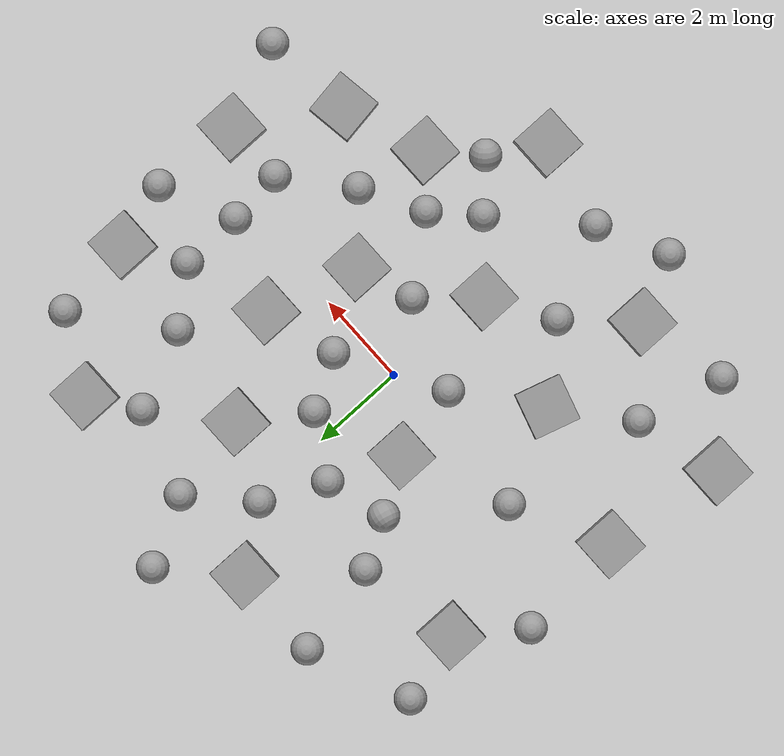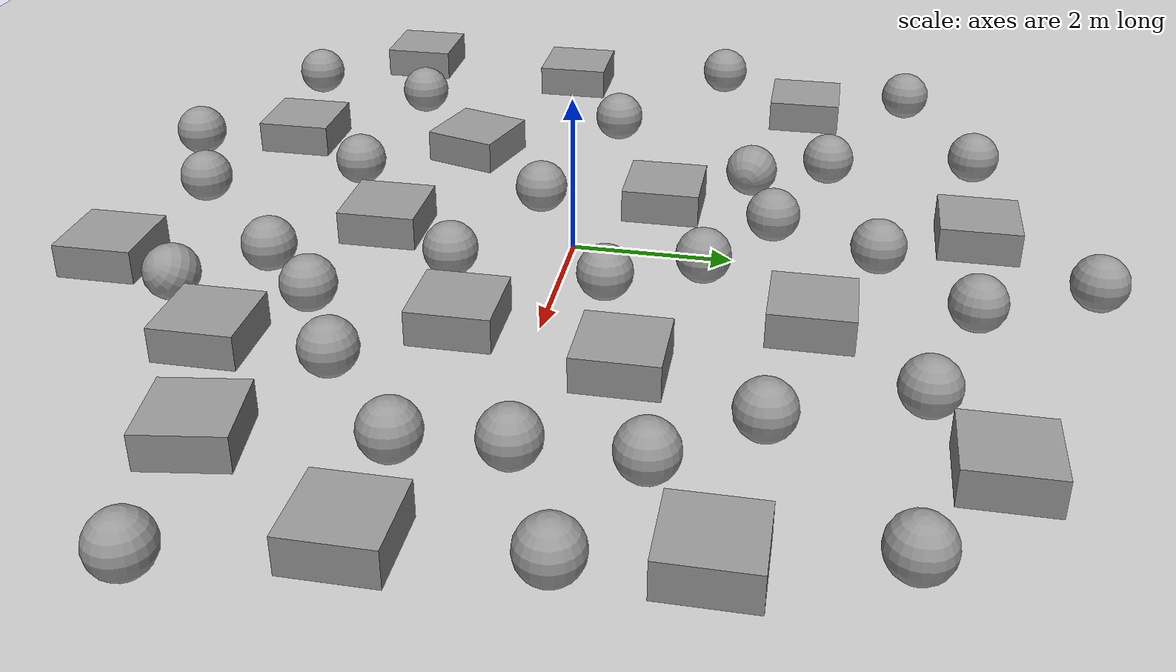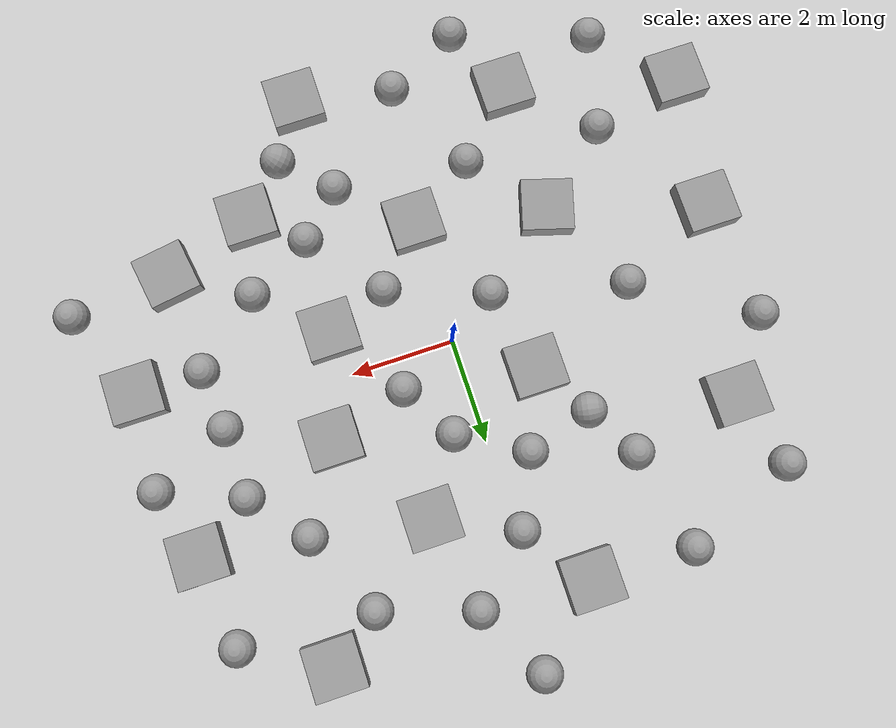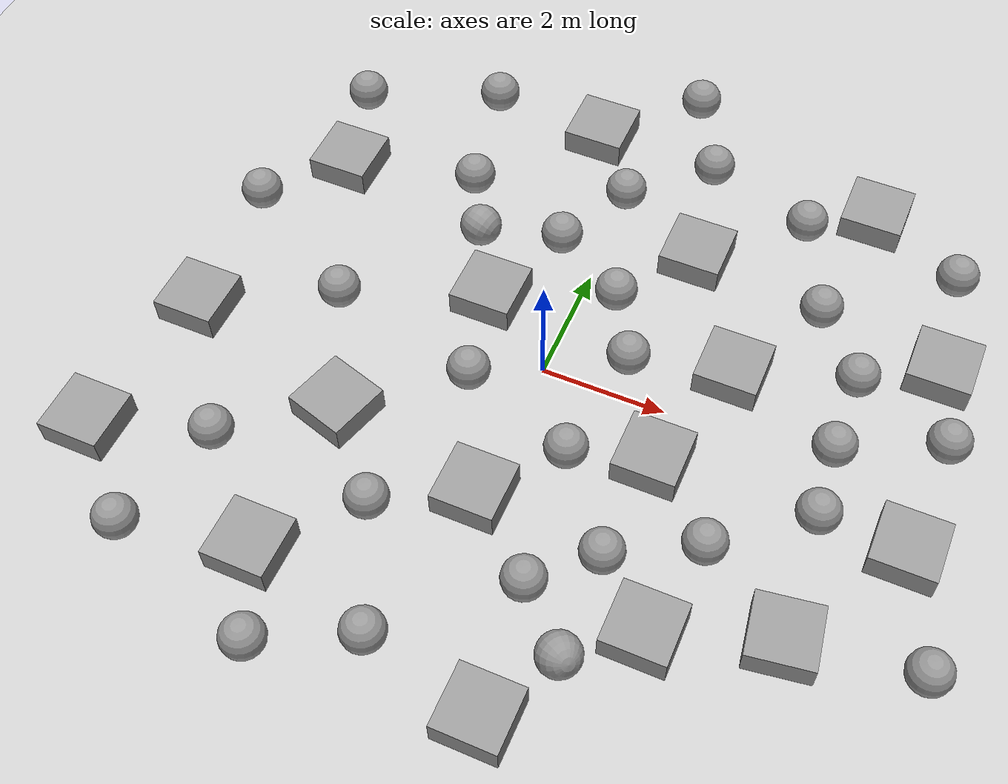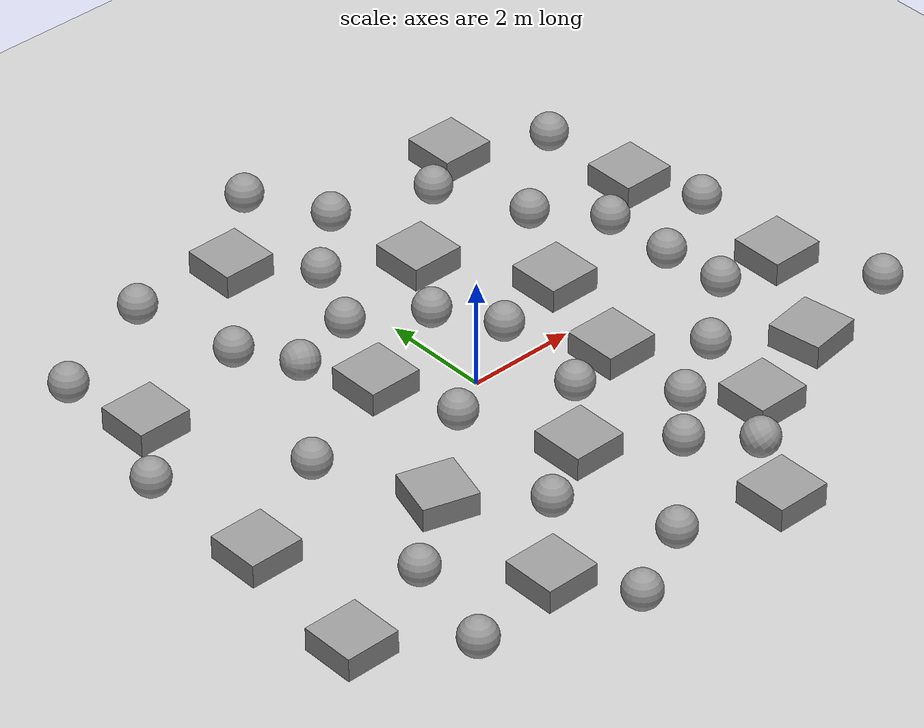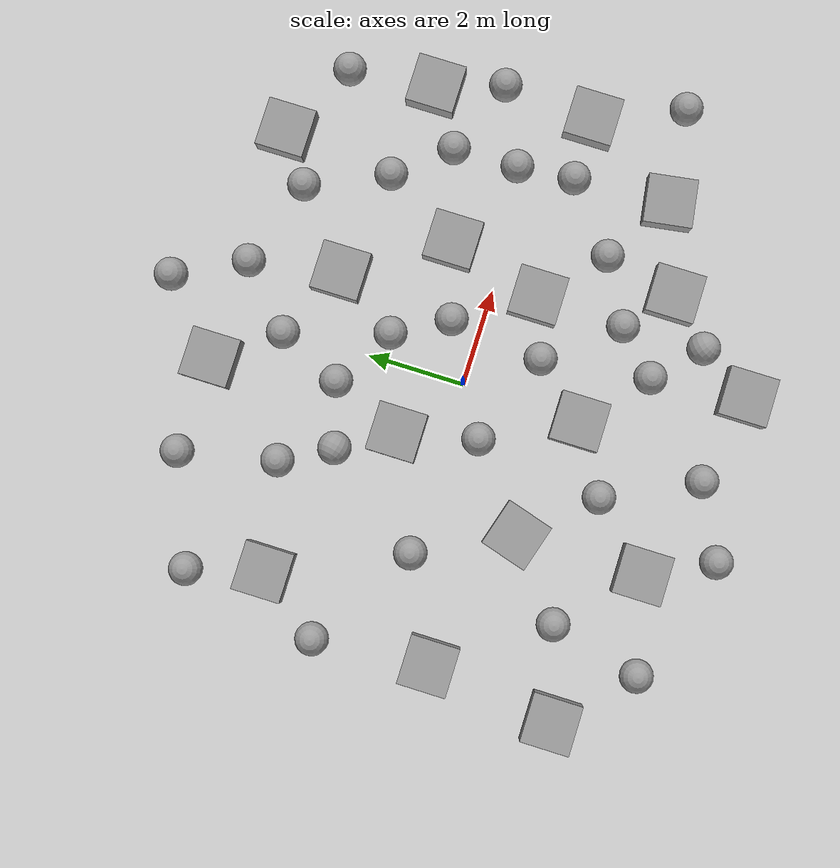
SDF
<sdf version="1.7">
 <world name="default">
  <light name="sun" type="directional">
   <pose>0 0 10 0 -0 0</pose>
   <diffuse>0.8 0.8 0.8 1</diffuse>
   <specular>0.2 0.2 0.2 1</specular>
   <attenuation>
    <range>1000</range>
    <constant>0.9</constant>
    <linear>0.01</linear>
    <quadratic>0.001</quadratic>
   </attenuation>
   <direction>-0.5 0.1 -0.9</direction>
   <spot><inner_angle>0</inner_angle><outer_angle>0</outer_angle><falloff>0</falloff></spot>
  </light>
  <model name="my_ground_plane">
   <static>1</static>
   <link name="plane">
    <visual name="plane"><geometry><plane><normal>0 0 1</normal><size>100 100</size></plane></geometry></visual>
    <collision name="plane">
     <geometry><plane><normal>0 0 1</normal><size>100 100</size></plane></geometry>
     <surface>
      <bounce><restitution_coefficient>0</restitution_coefficient><threshold>1e+06</threshold></bounce>
      <contact>
       <collide_without_contact>0</collide_without_contact>
       <collide_without_contact_bitmask>1</collide_without_contact_bitmask>
       <collide_bitmask>1</collide_bitmask>
       <ode>
        <soft_cfm>0</soft_cfm>
        <soft_erp>0.2</soft_erp>
        <kp>1e+06</kp>
        <kd>1000</kd>
        <max_vel>0</max_vel>
        <min_depth>0.001</min_depth>
       </ode>
       <bullet>
        <split_impulse>1</split_impulse>
        <split_impulse_penetration_threshold>-0.01</split_impulse_penetration_threshold>
        <soft_cfm>0</soft_cfm>
        <soft_erp>0.2</soft_erp>
        <kp>1e+06</kp>
        <kd>1000</kd>
       </bullet>
      </contact>
      <soft_contact>
       <dart>
        <bone_attachment>10</bone_attachment>
        <stiffness>10</stiffness>
        <damping>1</damping>
        <flesh_mass_fraction>0.05</flesh_mass_fraction>
       </dart>
      </soft_contact>
      <friction>
       <ode><mu>1</mu><mu2>10000</mu2><fdir1>0 0 1</fdir1><slip1>0</slip1><slip2>0</slip2></ode>
       <torsional>
        <coefficient>1</coefficient>
        <patch_radius>0</patch_radius>
        <surface_radius>0</surface_radius>
        <use_patch_radius>1</use_patch_radius>
        <ode><slip>0</slip></ode>
       </torsional>
      </friction>
     </surface>
    </collision>
   </link>
  </model>
  <physics default="1" type="ode">
   <max_step_size>0.001</max_step_size>
   <real_time_factor>1000</real_time_factor>
   <max_contacts>1</max_contacts>
   <ode>
    <solver>
     <type>quick</type>
     <iters>10</iters>
     <sor>1.3</sor>
     <use_dynamic_moi_rescaling>0</use_dynamic_moi_rescaling>
    </solver>
    <constraints>
     <cfm>0</cfm>
     <erp>0.2</erp>
     <contact_max_correcting_vel>100</contact_max_correcting_vel>
     <contact_surface_layer>0.001</contact_surface_layer>
    </constraints>
   </ode>
   <real_time_update_rate>1000</real_time_update_rate>
  </physics>
  <gravity>0 0 -9.8</gravity>
  <magnetic_field>6e-06 2.3e-05 -4.2e-05</magnetic_field>
  <atmosphere type="adiabatic"/>
  <scene><ambient>0.4 0.4 0.4 1</ambient><background>0.7 0.7 0.7 1</background><shadows>1</shadows></scene>
  <spherical_coordinates>
   <surface_model>EARTH_WGS84</surface_model>
   <latitude_deg>0</latitude_deg>
   <longitude_deg>0</longitude_deg>
   <elevation>0</elevation>
   <heading_deg>0</heading_deg>
  </spherical_coordinates>
  <model name="unit_box">
   <pose>-2.56551 -1.90828 0.216406 -1.2e-05 2.9e-05 1.2813</pose>
   <link name="link">
    <inertial>
     <mass>1</mass>
     <inertia>
      <ixx>0.166667</ixx>
      <ixy>0</ixy>
      <ixz>0</ixz>
      <iyy>0.166667</iyy>
      <iyz>0</iyz>
      <izz>0.166667</izz>
     </inertia>
    </inertial>
    <collision name="collision"><geometry><box><size>1 1 0.432928</size></box></geometry></collision>
    <visual name="visual">
     <geometry><box><size>1 1 0.432928</size></box></geometry>
     <material>
      <script><name>Gazebo/Grey</name><uri>file://media/materials/scripts/gazebo.material</uri></script>
     </material>
    </visual>
   </link>
  </model>
  <model name="unit_box_clone">
   <pose>-2.57069 -4.51541 0.216404 1.2e-05 -3e-05 0.000461</pose>
   <link name="link">
    <inertial>
     <mass>1</mass>
     <inertia>
      <ixx>0.166667</ixx>
      <ixy>0</ixy>
      <ixz>0</ixz>
      <iyy>0.166667</iyy>
      <iyz>0</iyz>
      <izz>0.166667</izz>
     </inertia>
    </inertial>
    <collision name="collision"><geometry><box><size>1 1 0.432928</size></box></geometry></collision>
    <visual name="visual">
     <geometry><box><size>1 1 0.432928</size></box></geometry>
     <material>
      <script><name>Gazebo/Grey</name><uri>file://media/materials/scripts/gazebo.material</uri></script>
     </material>
    </visual>
   </link>
  </model>
  <model name="unit_box_clone_0">
   <pose>-0.032227 -2.44685 0.216404 -3e-05 -1.2e-05 0.00073</pose>
   <link name="link">
    <inertial>
     <mass>1</mass>
     <inertia>
      <ixx>0.166667</ixx>
      <ixy>0</ixy>
      <ixz>0</ixz>
      <iyy>0.166667</iyy>
      <iyz>0</iyz>
      <izz>0.166667</izz>
     </inertia>
    </inertial>
    <collision name="collision"><geometry><box><size>1 1 0.432928</size></box></geometry></collision>
    <visual name="visual">
     <geometry><box><size>1 1 0.432928</size></box></geometry>
     <material>
      <script><name>Gazebo/Grey</name><uri>file://media/materials/scripts/gazebo.material</uri></script>
     </material>
    </visual>
   </link>
  </model>
  <model name="unit_box_clone_1">
   <pose>-1.32004 0.97796 0.216404 -1.2e-05 3e-05 0.000172</pose>
   <link name="link">
    <inertial>
     <mass>1</mass>
     <inertia>
      <ixx>0.166667</ixx>
      <ixy>0</ixy>
      <ixz>0</ixz>
      <iyy>0.166667</iyy>
      <iyz>0</iyz>
      <izz>0.166667</izz>
     </inertia>
    </inertial>
    <collision name="collision"><geometry><box><size>1 1 0.432928</size></box></geometry></collision>
    <visual name="visual">
     <geometry><box><size>1 1 0.432928</size></box></geometry>
     <material>
      <script><name>Gazebo/Grey</name><uri>file://media/materials/scripts/gazebo.material</uri></script>
     </material>
    </visual>
   </link>
  </model>
  <model name="unit_box_clone_2">
   <pose>-4.73653 2.66985 0.216404 3e-05 1.2e-05 0.000369</pose>
   <link name="link">
    <inertial>
     <mass>1</mass>
     <inertia>
      <ixx>0.166667</ixx>
      <ixy>0</ixy>
      <ixz>0</ixz>
      <iyy>0.166667</iyy>
      <iyz>0</iyz>
      <izz>0.166667</izz>
     </inertia>
    </inertial>
    <collision name="collision"><geometry><box><size>1 1 0.432928</size></box></geometry></collision>
    <visual name="visual">
     <geometry><box><size>1 1 0.432928</size></box></geometry>
     <material>
      <script><name>Gazebo/Grey</name><uri>file://media/materials/scripts/gazebo.material</uri></script>
     </material>
    </visual>
   </link>
  </model>
  <model name="unit_box_clone_3">
   <pose>-5.87273 -3.63259 0.216404 1.2e-05 -3e-05 -0.00019</pose>
   <link name="link">
    <inertial>
     <mass>1</mass>
     <inertia>
      <ixx>0.166667</ixx>
      <ixy>0</ixy>
      <ixz>0</ixz>
      <iyy>0.166667</iyy>
      <iyz>0</iyz>
      <izz>0.166667</izz>
     </inertia>
    </inertial>
    <collision name="collision"><geometry><box><size>1 1 0.432928</size></box></geometry></collision>
    <visual name="visual">
     <geometry><box><size>1 1 0.432928</size></box></geometry>
     <material>
      <script><name>Gazebo/Grey</name><uri>file://media/materials/scripts/gazebo.material</uri></script>
     </material>
    </visual>
   </link>
  </model>
  <model name="unit_box_clone_4">
   <pose>-5.52181 -0.999996 0.216404 -1.2e-05 3e-05 -0.000408</pose>
   <link name="link">
    <inertial>
     <mass>1</mass>
     <inertia>
      <ixx>0.166667</ixx>
      <ixy>0</ixy>
      <ixz>0</ixz>
      <iyy>0.166667</iyy>
      <iyz>0</iyz>
      <izz>0.166667</izz>
     </inertia>
    </inertial>
    <collision name="collision"><geometry><box><size>1 1 0.432928</size></box></geometry></collision>
    <visual name="visual">
     <geometry><box><size>1 1 0.432928</size></box></geometry>
     <material>
      <script><name>Gazebo/Grey</name><uri>file://media/materials/scripts/gazebo.material</uri></script>
     </material>
    </visual>
   </link>
  </model>
  <model name="unit_box_clone_5">
   <pose>-1.00001 5 0.216404 1.2e-05 -3e-05 -0.000553</pose>
   <link name="link">
    <inertial>
     <mass>1</mass>
     <inertia>
      <ixx>0.166667</ixx>
      <ixy>0</ixy>
      <ixz>0</ixz>
      <iyy>0.166667</iyy>
      <iyz>0</iyz>
      <izz>0.166667</izz>
     </inertia>
    </inertial>
    <collision name="collision"><geometry><box><size>1 1 0.432928</size></box></geometry></collision>
    <visual name="visual">
     <geometry><box><size>1 1 0.432928</size></box></geometry>
     <material>
      <script><name>Gazebo/Grey</name><uri>file://media/materials/scripts/gazebo.material</uri></script>
     </material>
    </visual>
   </link>
  </model>
  <model name="unit_box_clone_6">
   <pose>1.43636 -5.51743 0.216404 -3e-05 1.2e-05 0.000997</pose>
   <link name="link">
    <inertial>
     <mass>1</mass>
     <inertia>
      <ixx>0.166667</ixx>
      <ixy>0</ixy>
      <ixz>0</ixz>
      <iyy>0.166667</iyy>
      <iyz>0</iyz>
      <izz>0.166667</izz>
     </inertia>
    </inertial>
    <collision name="collision"><geometry><box><size>1 1 0.432928</size></box></geometry></collision>
    <visual name="visual">
     <geometry><box><size>1 1 0.432928</size></box></geometry>
     <material>
      <script><name>Gazebo/Grey</name><uri>file://media/materials/scripts/gazebo.material</uri></script>
     </material>
    </visual>
   </link>
  </model>
  <model name="unit_box_clone_7">
   <pose>4.77801 -2.90254 0.216404 -1.2e-05 -2.9e-05 0.148506</pose>
   <link name="link">
    <inertial>
     <mass>1</mass>
     <inertia>
      <ixx>0.166667</ixx>
      <ixy>0</ixy>
      <ixz>0</ixz>
      <iyy>0.166667</iyy>
      <iyz>0</iyz>
      <izz>0.166667</izz>
     </inertia>
    </inertial>
    <collision name="collision"><geometry><box><size>1 1 0.432928</size></box></geometry></collision>
    <visual name="visual">
     <geometry><box><size>1 1 0.432928</size></box></geometry>
     <material>
      <script><name>Gazebo/Grey</name><uri>file://media/materials/scripts/gazebo.material</uri></script>
     </material>
    </visual>
   </link>
  </model>
  <model name="unit_box_clone_8">
   <pose>2.15178 -0.909092 0.216404 3e-05 -1.2e-05 0.000706</pose>
   <link name="link">
    <inertial>
     <mass>1</mass>
     <inertia>
      <ixx>0.166667</ixx>
      <ixy>0</ixy>
      <ixz>0</ixz>
      <iyy>0.166667</iyy>
      <iyz>0</iyz>
      <izz>0.166667</izz>
     </inertia>
    </inertial>
    <collision name="collision"><geometry><box><size>1 1 0.432928</size></box></geometry></collision>
    <visual name="visual">
     <geometry><box><size>1 1 0.432928</size></box></geometry>
     <material>
      <script><name>Gazebo/Grey</name><uri>file://media/materials/scripts/gazebo.material</uri></script>
     </material>
    </visual>
   </link>
  </model>
  <model name="unit_box_clone_9">
   <pose>2.99997 -3.53883 0.216427 -1.1e-05 -1.5e-05 0.000387</pose>
   <link name="link">
    <inertial>
     <mass>1</mass>
     <inertia>
      <ixx>0.166667</ixx>
      <ixy>0</ixy>
      <ixz>0</ixz>
      <iyy>0.166667</iyy>
      <iyz>0</iyz>
      <izz>0.166667</izz>
     </inertia>
    </inertial>
    <collision name="collision"><geometry><box><size>1 1 0.432928</size></box></geometry></collision>
    <visual name="visual">
     <geometry><box><size>1 1 0.432928</size></box></geometry>
     <material>
      <script><name>Gazebo/Grey</name><uri>file://media/materials/scripts/gazebo.material</uri></script>
     </material>
    </visual>
   </link>
  </model>
  <model name="unit_box_clone_10">
   <pose>1.44567 3.03575 0.216404 1.2e-05 3e-05 0.000815</pose>
   <link name="link">
    <inertial>
     <mass>1</mass>
     <inertia>
      <ixx>0.166667</ixx>
      <ixy>0</ixy>
      <ixz>0</ixz>
      <iyy>0.166667</iyy>
      <iyz>0</iyz>
      <izz>0.166667</izz>
     </inertia>
    </inertial>
    <collision name="collision"><geometry><box><size>1 1 0.432928</size></box></geometry></collision>
    <visual name="visual">
     <geometry><box><size>1 1 0.432928</size></box></geometry>
     <material>
      <script><name>Gazebo/Grey</name><uri>file://media/materials/scripts/gazebo.material</uri></script>
     </material>
    </visual>
   </link>
  </model>
  <model name="unit_box_clone_11">
   <pose>3.9093 4.98848 0.216404 3e-05 1.2e-05 0.000517</pose>
   <link name="link">
    <inertial>
     <mass>1</mass>
     <inertia>
      <ixx>0.166667</ixx>
      <ixy>0</ixy>
      <ixz>0</ixz>
      <iyy>0.166667</iyy>
      <iyz>0</iyz>
      <izz>0.166667</izz>
     </inertia>
    </inertial>
    <collision name="collision"><geometry><box><size>1 1 0.432928</size></box></geometry></collision>
    <visual name="visual">
     <geometry><box><size>1 1 0.432928</size></box></geometry>
     <material>
      <script><name>Gazebo/Grey</name><uri>file://media/materials/scripts/gazebo.material</uri></script>
     </material>
    </visual>
   </link>
  </model>
  <model name="unit_box_clone_12">
   <pose>5.68865 2.34997 0.216404 1.2e-05 -3e-05 -4.2e-05</pose>
   <link name="link">
    <inertial>
     <mass>1</mass>
     <inertia>
      <ixx>0.166667</ixx>
      <ixy>0</ixy>
      <ixz>0</ixz>
      <iyy>0.166667</iyy>
      <iyz>0</iyz>
      <izz>0.166667</izz>
     </inertia>
    </inertial>
    <collision name="collision"><geometry><box><size>1 1 0.432928</size></box></geometry></collision>
    <visual name="visual">
     <geometry><box><size>1 1 0.432928</size></box></geometry>
     <material>
      <script><name>Gazebo/Grey</name><uri>file://media/materials/scripts/gazebo.material</uri></script>
     </material>
    </visual>
   </link>
  </model>
  <model name="unit_box_clone_13">
   <pose>2.72851 1.0618 0.216404 -1.2e-05 3e-05 -0.000334</pose>
   <link name="link">
    <inertial>
     <mass>1</mass>
     <inertia>
      <ixx>0.166667</ixx>
      <ixy>0</ixy>
      <ixz>0</ixz>
      <iyy>0.166667</iyy>
      <iyz>0</iyz>
      <izz>0.166667</izz>
     </inertia>
    </inertial>
    <collision name="collision"><geometry><box><size>1 1 0.432928</size></box></geometry></collision>
    <visual name="visual">
     <geometry><box><size>1 1 0.432928</size></box></geometry>
     <material>
      <script><name>Gazebo/Grey</name><uri>file://media/materials/scripts/gazebo.material</uri></script>
     </material>
    </visual>
   </link>
  </model>
  <model name="unit_box_clone_14">
   <pose>5.98965 -0.911359 0.216404 3e-05 1.2e-05 -0.000211</pose>
   <link name="link">
    <inertial>
     <mass>1</mass>
     <inertia>
      <ixx>0.166667</ixx>
      <ixy>0</ixy>
      <ixz>0</ixz>
      <iyy>0.166667</iyy>
      <iyz>0</iyz>
      <izz>0.166667</izz>
     </inertia>
    </inertial>
    <collision name="collision"><geometry><box><size>1 1 0.432928</size></box></geometry></collision>
    <visual name="visual">
     <geometry><box><size>1 1 0.432928</size></box></geometry>
     <material>
      <script><name>Gazebo/Grey</name><uri>file://media/materials/scripts/gazebo.material</uri></script>
     </material>
    </visual>
   </link>
  </model>
  <model name="unit_sphere">
   <pose>1.22164 -3.54343 0.339728 0 -0 0</pose>
   <link name="link">
    <inertial>
     <mass>1</mass>
     <inertia><ixx>0.1</ixx><ixy>0</ixy><ixz>0</ixz><iyy>0.1</iyy><iyz>0</iyz><izz>0.1</izz></inertia>
    </inertial>
    <collision name="collision"><geometry><sphere><radius>0.339738</radius></sphere></geometry></collision>
    <visual name="visual">
     <geometry><sphere><radius>0.339738</radius></sphere></geometry>
     <material>
      <script><name>Gazebo/Grey</name><uri>file://media/materials/scripts/gazebo.material</uri></script>
     </material>
    </visual>
   </link>
  </model>
  <model name="unit_sphere_clone">
   <pose>3.33514 -2.01552 0.339728 0 -0 0</pose>
   <link name="link">
    <inertial>
     <mass>1</mass>
     <inertia><ixx>0.1</ixx><ixy>0</ixy><ixz>0</ixz><iyy>0.1</iyy><iyz>0</iyz><izz>0.1</izz></inertia>
    </inertial>
    <collision name="collision"><geometry><sphere><radius>0.339738</radius></sphere></geometry></collision>
    <visual name="visual">
     <geometry><sphere><radius>0.339738</radius></sphere></geometry>
     <material>
      <script><name>Gazebo/Grey</name><uri>file://media/materials/scripts/gazebo.material</uri></script>
     </material>
    </visual>
   </link>
  </model>
  <model name="unit_sphere_clone_0">
   <pose>4.55598 0.26518 0.339728 0 -0 0</pose>
   <link name="link">
    <inertial>
     <mass>1</mass>
     <inertia><ixx>0.1</ixx><ixy>0</ixy><ixz>0</ixz><iyy>0.1</iyy><iyz>0</iyz><izz>0.1</izz></inertia>
    </inertial>
    <collision name="collision"><geometry><sphere><radius>0.339738</radius></sphere></geometry></collision>
    <visual name="visual">
     <geometry><sphere><radius>0.339738</radius></sphere></geometry>
     <material>
      <script><name>Gazebo/Grey</name><uri>file://media/materials/scripts/gazebo.material</uri></script>
     </material>
    </visual>
   </link>
  </model>
  <model name="unit_sphere_clone_1">
   <pose>4.66141 -0.90999 0.339728 0 -0 0</pose>
   <link name="link">
    <inertial>
     <mass>1</mass>
     <inertia><ixx>0.1</ixx><ixy>0</ixy><ixz>0</ixz><iyy>0.1</iyy><iyz>0</iyz><izz>0.1</izz></inertia>
    </inertial>
    <collision name="collision"><geometry><sphere><radius>0.339738</radius></sphere></geometry></collision>
    <visual name="visual">
     <geometry><sphere><radius>0.339738</radius></sphere></geometry>
     <material>
      <script><name>Gazebo/Grey</name><uri>file://media/materials/scripts/gazebo.material</uri></script>
     </material>
    </visual>
   </link>
  </model>
  <model name="unit_sphere_clone_2">
   <pose>2.1054 -4.3963 0.339728 0.616639 -0.758014 1.66225</pose>
   <link name="link">
    <inertial>
     <mass>1</mass>
     <inertia><ixx>0.1</ixx><ixy>0</ixy><ixz>0</ixz><iyy>0.1</iyy><iyz>0</iyz><izz>0.1</izz></inertia>
    </inertial>
    <collision name="collision"><geometry><sphere><radius>0.339738</radius></sphere></geometry></collision>
    <visual name="visual">
     <geometry><sphere><radius>0.339738</radius></sphere></geometry>
     <material>
      <script><name>Gazebo/Grey</name><uri>file://media/materials/scripts/gazebo.material</uri></script>
     </material>
    </visual>
   </link>
  </model>
  <model name="unit_sphere_clone_3">
   <pose>-0.460179 -5.11526 0.339728 0 -0 0</pose>
   <link name="link">
    <inertial>
     <mass>1</mass>
     <inertia><ixx>0.1</ixx><ixy>0</ixy><ixz>0</ixz><iyy>0.1</iyy><iyz>0</iyz><izz>0.1</izz></inertia>
    </inertial>
    <collision name="collision"><geometry><sphere><radius>0.339738</radius></sphere></geometry></collision>
    <visual name="visual">
     <geometry><sphere><radius>0.339738</radius></sphere></geometry>
     <material>
      <script><name>Gazebo/Grey</name><uri>file://media/materials/scripts/gazebo.material</uri></script>
     </material>
    </visual>
   </link>
  </model>
  <model name="unit_sphere_clone_4">
   <pose>-1.36819 -3.24966 0.339728 0 -0 0</pose>
   <link name="link">
    <inertial>
     <mass>1</mass>
     <inertia><ixx>0.1</ixx><ixy>0</ixy><ixz>0</ixz><iyy>0.1</iyy><iyz>0</iyz><izz>0.1</izz></inertia>
    </inertial>
    <collision name="collision"><geometry><sphere><radius>0.339738</radius></sphere></geometry></collision>
    <visual name="visual">
     <geometry><sphere><radius>0.339738</radius></sphere></geometry>
     <material>
      <script><name>Gazebo/Grey</name><uri>file://media/materials/scripts/gazebo.material</uri></script>
     </material>
    </visual>
   </link>
  </model>
  <model name="unit_sphere_clone_5">
   <pose>-4.02602 -3.10738 0.339728 0 -0 0</pose>
   <link name="link">
    <inertial>
     <mass>1</mass>
     <inertia><ixx>0.1</ixx><ixy>0</ixy><ixz>0</ixz><iyy>0.1</iyy><iyz>0</iyz><izz>0.1</izz></inertia>
    </inertial>
    <collision name="collision"><geometry><sphere><radius>0.339738</radius></sphere></geometry></collision>
    <visual name="visual">
     <geometry><sphere><radius>0.339738</radius></sphere></geometry>
     <material>
      <script><name>Gazebo/Grey</name><uri>file://media/materials/scripts/gazebo.material</uri></script>
     </material>
    </visual>
   </link>
  </model>
  <model name="unit_sphere_clone_6">
   <pose>-3.52657 9e-05 0.339728 0 -0 0</pose>
   <link name="link">
    <inertial>
     <mass>1</mass>
     <inertia><ixx>0.1</ixx><ixy>0</ixy><ixz>0</ixz><iyy>0.1</iyy><iyz>0</iyz><izz>0.1</izz></inertia>
    </inertial>
    <collision name="collision"><geometry><sphere><radius>0.339738</radius></sphere></geometry></collision>
    <visual name="visual">
     <geometry><sphere><radius>0.339738</radius></sphere></geometry>
     <material>
      <script><name>Gazebo/Grey</name><uri>file://media/materials/scripts/gazebo.material</uri></script>
     </material>
    </visual>
   </link>
  </model>
  <model name="unit_sphere_clone_7">
   <pose>-0.970587 -0.620649 0.339728 0 -0 0</pose>
   <link name="link">
    <inertial>
     <mass>1</mass>
     <inertia><ixx>0.1</ixx><ixy>0</ixy><ixz>0</ixz><iyy>0.1</iyy><iyz>0</iyz><izz>0.1</izz></inertia>
    </inertial>
    <collision name="collision"><geometry><sphere><radius>0.339738</radius></sphere></geometry></collision>
    <visual name="visual">
     <geometry><sphere><radius>0.339738</radius></sphere></geometry>
     <material>
      <script><name>Gazebo/Grey</name><uri>file://media/materials/scripts/gazebo.material</uri></script>
     </material>
    </visual>
   </link>
  </model>
  <model name="unit_sphere_clone_8">
   <pose>1.17135 0.607658 0.339728 0 -0 0</pose>
   <link name="link">
    <inertial>
     <mass>1</mass>
     <inertia><ixx>0.1</ixx><ixy>0</ixy><ixz>0</ixz><iyy>0.1</iyy><iyz>0</iyz><izz>0.1</izz></inertia>
    </inertial>
    <collision name="collision"><geometry><sphere><radius>0.339738</radius></sphere></geometry></collision>
    <visual name="visual">
     <geometry><sphere><radius>0.339738</radius></sphere></geometry>
     <material>
      <script><name>Gazebo/Grey</name><uri>file://media/materials/scripts/gazebo.material</uri></script>
     </material>
    </visual>
   </link>
  </model>
  <model name="unit_sphere_clone_9">
   <pose>-0.701361 2.44642 0.339728 0 -0 0</pose>
   <link name="link">
    <inertial>
     <mass>1</mass>
     <inertia><ixx>0.1</ixx><ixy>0</ixy><ixz>0</ixz><iyy>0.1</iyy><iyz>0</iyz><izz>0.1</izz></inertia>
    </inertial>
    <collision name="collision"><geometry><sphere><radius>0.339738</radius></sphere></geometry></collision>
    <visual name="visual">
     <geometry><sphere><radius>0.339738</radius></sphere></geometry>
     <material>
      <script><name>Gazebo/Grey</name><uri>file://media/materials/scripts/gazebo.material</uri></script>
     </material>
    </visual>
   </link>
  </model>
  <model name="unit_sphere_clone_10">
   <pose>-2.55936 3.07722 0.339728 0 -0 0</pose>
   <link name="link">
    <inertial>
     <mass>1</mass>
     <inertia><ixx>0.1</ixx><ixy>0</ixy><ixz>0</ixz><iyy>0.1</iyy><iyz>0</iyz><izz>0.1</izz></inertia>
    </inertial>
    <collision name="collision"><geometry><sphere><radius>0.339738</radius></sphere></geometry></collision>
    <visual name="visual">
     <geometry><sphere><radius>0.339738</radius></sphere></geometry>
     <material>
      <script><name>Gazebo/Grey</name><uri>file://media/materials/scripts/gazebo.material</uri></script>
     </material>
    </visual>
   </link>
  </model>
  <model name="unit_sphere_clone_11">
   <pose>-1.99123 2.06937 0.339728 1.19726 -0.980323 -1.45778</pose>
   <link name="link">
    <inertial>
     <mass>1</mass>
     <inertia><ixx>0.1</ixx><ixy>0</ixy><ixz>0</ixz><iyy>0.1</iyy><iyz>0</iyz><izz>0.1</izz></inertia>
    </inertial>
    <collision name="collision"><geometry><sphere><radius>0.339738</radius></sphere></geometry></collision>
    <visual name="visual">
     <geometry><sphere><radius>0.339738</radius></sphere></geometry>
     <material>
      <script><name>Gazebo/Grey</name><uri>file://media/materials/scripts/gazebo.material</uri></script>
     </material>
    </visual>
   </link>
  </model>
  <model name="unit_sphere_clone_12">
   <pose>-5.7019 1.35236 0.339728 0 -0 0</pose>
   <link name="link">
    <inertial>
     <mass>1</mass>
     <inertia><ixx>0.1</ixx><ixy>0</ixy><ixz>0</ixz><iyy>0.1</iyy><iyz>0</iyz><izz>0.1</izz></inertia>
    </inertial>
    <collision name="collision"><geometry><sphere><radius>0.339738</radius></sphere></geometry></collision>
    <visual name="visual">
     <geometry><sphere><radius>0.339738</radius></sphere></geometry>
     <material>
      <script><name>Gazebo/Grey</name><uri>file://media/materials/scripts/gazebo.material</uri></script>
     </material>
    </visual>
   </link>
  </model>
  <model name="unit_sphere_clone_13">
   <pose>-2.97386 5.04383 0.339728 0 -0 0</pose>
   <link name="link">
    <inertial>
     <mass>1</mass>
     <inertia><ixx>0.1</ixx><ixy>0</ixy><ixz>0</ixz><iyy>0.1</iyy><iyz>0</iyz><izz>0.1</izz></inertia>
    </inertial>
    <collision name="collision"><geometry><sphere><radius>0.339738</radius></sphere></geometry></collision>
    <visual name="visual">
     <geometry><sphere><radius>0.339738</radius></sphere></geometry>
     <material>
      <script><name>Gazebo/Grey</name><uri>file://media/materials/scripts/gazebo.material</uri></script>
     </material>
    </visual>
   </link>
  </model>
  <model name="unit_sphere_clone_14">
   <pose>1.10057 4.87113 0.339728 0 -0 0</pose>
   <link name="link">
    <inertial>
     <mass>1</mass>
     <inertia><ixx>0.1</ixx><ixy>0</ixy><ixz>0</ixz><iyy>0.1</iyy><iyz>0</iyz><izz>0.1</izz></inertia>
    </inertial>
    <collision name="collision"><geometry><sphere><radius>0.339738</radius></sphere></geometry></collision>
    <visual name="visual">
     <geometry><sphere><radius>0.339738</radius></sphere></geometry>
     <material>
      <script><name>Gazebo/Grey</name><uri>file://media/materials/scripts/gazebo.material</uri></script>
     </material>
    </visual>
   </link>
  </model>
  <model name="unit_sphere_clone_15">
   <pose>2.91339 4.28615 0.339728 0 -0 0</pose>
   <link name="link">
    <inertial>
     <mass>1</mass>
     <inertia><ixx>0.1</ixx><ixy>0</ixy><ixz>0</ixz><iyy>0.1</iyy><iyz>0</iyz><izz>0.1</izz></inertia>
    </inertial>
    <collision name="collision"><geometry><sphere><radius>0.339738</radius></sphere></geometry></collision>
    <visual name="visual">
     <geometry><sphere><radius>0.339738</radius></sphere></geometry>
     <material>
      <script><name>Gazebo/Grey</name><uri>file://media/materials/scripts/gazebo.material</uri></script>
     </material>
    </visual>
   </link>
  </model>
  <model name="unit_sphere_clone_16">
   <pose>3.64606 2.66208 0.339728 0 -0 0</pose>
   <link name="link">
    <inertial>
     <mass>1</mass>
     <inertia><ixx>0.1</ixx><ixy>0</ixy><ixz>0</ixz><iyy>0.1</iyy><iyz>0</iyz><izz>0.1</izz></inertia>
    </inertial>
    <collision name="collision"><geometry><sphere><radius>0.339738</radius></sphere></geometry></collision>
    <visual name="visual">
     <geometry><sphere><radius>0.339738</radius></sphere></geometry>
     <material>
      <script><name>Gazebo/Grey</name><uri>file://media/materials/scripts/gazebo.material</uri></script>
     </material>
    </visual>
   </link>
  </model>
  <model name="unit_sphere_clone_17">
   <pose>5.468 4.12279 0.339728 0 -0 0</pose>
   <link name="link">
    <inertial>
     <mass>1</mass>
     <inertia><ixx>0.1</ixx><ixy>0</ixy><ixz>0</ixz><iyy>0.1</iyy><iyz>0</iyz><izz>0.1</izz></inertia>
    </inertial>
    <collision name="collision"><geometry><sphere><radius>0.339738</radius></sphere></geometry></collision>
    <visual name="visual">
     <geometry><sphere><radius>0.339738</radius></sphere></geometry>
     <material>
      <script><name>Gazebo/Grey</name><uri>file://media/materials/scripts/gazebo.material</uri></script>
     </material>
    </visual>
   </link>
  </model>
  <model name="unit_sphere_clone_18">
   <pose>6.09393 0.985311 0.339728 0 -0 0</pose>
   <link name="link">
    <inertial>
     <mass>1</mass>
     <inertia><ixx>0.1</ixx><ixy>0</ixy><ixz>0</ixz><iyy>0.1</iyy><iyz>0</iyz><izz>0.1</izz></inertia>
    </inertial>
    <collision name="collision"><geometry><sphere><radius>0.339738</radius></sphere></geometry></collision>
    <visual name="visual">
     <geometry><sphere><radius>0.339738</radius></sphere></geometry>
     <material>
      <script><name>Gazebo/Grey</name><uri>file://media/materials/scripts/gazebo.material</uri></script>
     </material>
    </visual>
   </link>
  </model>
  <model name="unit_sphere_clone_19">
   <pose>0.544677 1.69832 0.339728 0 -0 0</pose>
   <link name="link">
    <inertial>
     <mass>1</mass>
     <inertia><ixx>0.1</ixx><ixy>0</ixy><ixz>0</ixz><iyy>0.1</iyy><iyz>0</iyz><izz>0.1</izz></inertia>
    </inertial>
    <collision name="collision"><geometry><sphere><radius>0.339738</radius></sphere></geometry></collision>
    <visual name="visual">
     <geometry><sphere><radius>0.339738</radius></sphere></geometry>
     <material>
      <script><name>Gazebo/Grey</name><uri>file://media/materials/scripts/gazebo.material</uri></script>
     </material>
    </visual>
   </link>
  </model>
  <model name="unit_sphere_clone_20">
   <pose>-0.082072 3.7639 0.339728 0 -0 0</pose>
   <link name="link">
    <inertial>
     <mass>1</mass>
     <inertia><ixx>0.1</ixx><ixy>0</ixy><ixz>0</ixz><iyy>0.1</iyy><iyz>0</iyz><izz>0.1</izz></inertia>
    </inertial>
    <collision name="collision"><geometry><sphere><radius>0.339738</radius></sphere></geometry></collision>
    <visual name="visual">
     <geometry><sphere><radius>0.339738</radius></sphere></geometry>
     <material>
      <script><name>Gazebo/Grey</name><uri>file://media/materials/scripts/gazebo.material</uri></script>
     </material>
    </visual>
   </link>
  </model>
  <model name="unit_sphere_clone_21">
   <pose>-5.13657 4.15181 0.339728 0 -0 0</pose>
   <link name="link">
    <inertial>
     <mass>1</mass>
     <inertia><ixx>0.1</ixx><ixy>0</ixy><ixz>0</ixz><iyy>0.1</iyy><iyz>0</iyz><izz>0.1</izz></inertia>
    </inertial>
    <collision name="collision"><geometry><sphere><radius>0.339738</radius></sphere></geometry></collision>
    <visual name="visual">
     <geometry><sphere><radius>0.339738</radius></sphere></geometry>
     <material>
      <script><name>Gazebo/Grey</name><uri>file://media/materials/scripts/gazebo.material</uri></script>
     </material>
    </visual>
   </link>
  </model>
  <model name="unit_sphere_clone_22">
   <pose>0.936997 -1.33336 0.339728 0 -0 0</pose>
   <link name="link">
    <inertial>
     <mass>1</mass>
     <inertia><ixx>0.1</ixx><ixy>0</ixy><ixz>0</ixz><iyy>0.1</iyy><iyz>0</iyz><izz>0.1</izz></inertia>
    </inertial>
    <collision name="collision"><geometry><sphere><radius>0.339738</radius></sphere></geometry></collision>
    <visual name="visual">
     <geometry><sphere><radius>0.339738</radius></sphere></geometry>
     <material>
      <script><name>Gazebo/Grey</name><uri>file://media/materials/scripts/gazebo.material</uri></script>
     </material>
    </visual>
   </link>
  </model>
  <model name="unit_sphere_clone_23">
   <pose>2.05944 -2.72203 0.339728 0 -0 0</pose>
   <link name="link">
    <inertial>
     <mass>1</mass>
     <inertia><ixx>0.1</ixx><ixy>0</ixy><ixz>0</ixz><iyy>0.1</iyy><iyz>0</iyz><izz>0.1</izz></inertia>
    </inertial>
    <collision name="collision"><geometry><sphere><radius>0.339738</radius></sphere></geometry></collision>
    <visual name="visual">
     <geometry><sphere><radius>0.339738</radius></sphere></geometry>
     <material>
      <script><name>Gazebo/Grey</name><uri>file://media/materials/scripts/gazebo.material</uri></script>
     </material>
    </visual>
   </link>
  </model>
  <model name="unit_sphere_clone_24">
   <pose>4.53097 1.60582 0.339728 0 -0 0</pose>
   <link name="link">
    <inertial>
     <mass>1</mass>
     <inertia><ixx>0.1</ixx><ixy>0</ixy><ixz>0</ixz><iyy>0.1</iyy><iyz>0</iyz><izz>0.1</izz></inertia>
    </inertial>
    <collision name="collision"><geometry><sphere><radius>0.339738</radius></sphere></geometry></collision>
    <visual name="visual">
     <geometry><sphere><radius>0.339738</radius></sphere></geometry>
     <material>
      <script><name>Gazebo/Grey</name><uri>file://media/materials/scripts/gazebo.material</uri></script>
     </material>
    </visual>
   </link>
  </model>
  <model name="unit_sphere_clone_25">
   <pose>0.371918 6.28114 0.339728 0 -0 0</pose>
   <link name="link">
    <inertial>
     <mass>1</mass>
     <inertia><ixx>0.1</ixx><ixy>0</ixy><ixz>0</ixz><iyy>0.1</iyy><iyz>0</iyz><izz>0.1</izz></inertia>
    </inertial>
    <collision name="collision"><geometry><sphere><radius>0.339738</radius></sphere></geometry></collision>
    <visual name="visual">
     <geometry><sphere><radius>0.339738</radius></sphere></geometry>
     <material>
      <script><name>Gazebo/Grey</name><uri>file://media/materials/scripts/gazebo.material</uri></script>
     </material>
    </visual>
   </link>
  </model>
  <model name="unit_sphere_clone_26">
   <pose>-4.49781 -4.95829 0.339728 0 -0 0</pose>
   <link name="link">
    <inertial>
     <mass>1</mass>
     <inertia><ixx>0.1</ixx><ixy>0</ixy><ixz>0</ixz><iyy>0.1</iyy><iyz>0</iyz><izz>0.1</izz></inertia>
    </inertial>
    <collision name="collision"><geometry><sphere><radius>0.339738</radius></sphere></geometry></collision>
    <visual name="visual">
     <geometry><sphere><radius>0.339738</radius></sphere></geometry>
     <material>
      <script><name>Gazebo/Grey</name><uri>file://media/materials/scripts/gazebo.material</uri></script>
     </material>
    </visual>
   </link>
  </model>
  <model name="unit_sphere_clone_27">
   <pose>-1.90527 -5.8372 0.339728 0 -0 0</pose>
   <link name="link">
    <inertial>
     <mass>1</mass>
     <inertia><ixx>0.1</ixx><ixy>0</ixy><ixz>0</ixz><iyy>0.1</iyy><iyz>0</iyz><izz>0.1</izz></inertia>
    </inertial>
    <collision name="collision"><geometry><sphere><radius>0.339738</radius></sphere></geometry></collision>
    <visual name="visual">
     <geometry><sphere><radius>0.339738</radius></sphere></geometry>
     <material>
      <script><name>Gazebo/Grey</name><uri>file://media/materials/scripts/gazebo.material</uri></script>
     </material>
    </visual>
   </link>
  </model>
  <model name="unit_sphere_clone_28">
   <pose>6.70728 -2.67762 0.339728 0 -0 0</pose>
   <link name="link">
    <inertial>
     <mass>1</mass>
     <inertia><ixx>0.1</ixx><ixy>0</ixy><ixz>0</ixz><iyy>0.1</iyy><iyz>0</iyz><izz>0.1</izz></inertia>
    </inertial>
    <collision name="collision"><geometry><sphere><radius>0.339738</radius></sphere></geometry></collision>
    <visual name="visual">
     <geometry><sphere><radius>0.339738</radius></sphere></geometry>
     <material>
      <script><name>Gazebo/Grey</name><uri>file://media/materials/scripts/gazebo.material</uri></script>
     </material>
    </visual>
   </link>
  </model>
 </world>
</sdf>
